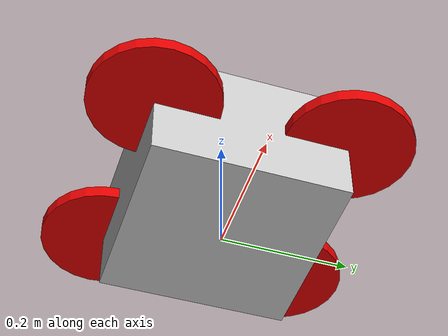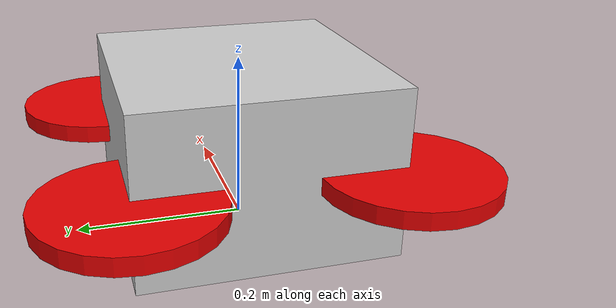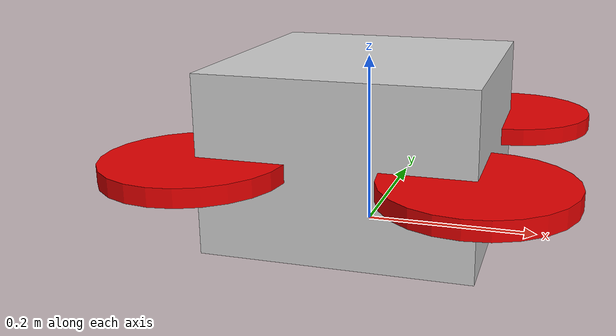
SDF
<?xml version='1.0'?>
<sdf version='1.6'>
  <model name='autonomous_drone'>
    <!-- Base drone parameters -->
    <link name='base_link'>
      <pose>0 0 0.1 0 0 0</pose>
      <inertial>
        <mass>1.5</mass>
        <inertia>
          <ixx>0.0347563</ixx>
          <iyy>0.0458929</iyy>
          <izz>0.0976733</izz>
        </inertia>
      </inertial>
      <collision name='base_collision'>
        <geometry>
          <box>
            <size>0.3 0.3 0.2</size>
          </box>
        </geometry>
      </collision>
      <visual name='base_visual'>
        <geometry>
          <box>
            <size>0.3 0.3 0.2</size>
          </box>
        </geometry>
        <material>
          <ambient>0.8 0.8 0.8 1</ambient>
        </material>
      </visual>
    </link>

    <!-- Rotor 1 (Front Right) -->
    <link name='rotor_1'>
      <pose>0.15 -0.15 0.1 0 0 0</pose>
      <inertial>
        <mass>0.1</mass>
        <inertia>
          <ixx>0.001</ixx>
          <iyy>0.001</iyy>
          <izz>0.001</izz>
        </inertia>
      </inertial>
      <collision name='rotor_1_collision'>
        <geometry>
          <cylinder>
            <radius>0.1</radius>
            <length>0.02</length>
          </cylinder>
        </geometry>
      </collision>
      <visual name='rotor_1_visual'>
        <geometry>
          <cylinder>
            <radius>0.1</radius>
            <length>0.02</length>
          </cylinder>
        </geometry>
        <material>
          <ambient>0.9 0 0 1</ambient>
        </material>
      </visual>
    </link>

    <!-- Rotor 2 (Front left) -->
    <link name='rotor_1'>
      <pose>-0.15 -0.15 0.1 0 0 0</pose>
      <inertial>
        <mass>0.1</mass>
        <inertia>
          <ixx>0.001</ixx>
          <iyy>0.001</iyy>
          <izz>0.001</izz>
        </inertia>
      </inertial>
      <collision name='rotor_1_collision'>
        <geometry>
          <cylinder>
            <radius>0.1</radius>
            <length>0.02</length>
          </cylinder>
        </geometry>
      </collision>
      <visual name='rotor_1_visual'>
        <geometry>
          <cylinder>
            <radius>0.1</radius>
            <length>0.02</length>
          </cylinder>
        </geometry>
        <material>
          <ambient>0.9 0 0 1</ambient>
        </material>
      </visual>
    </link>

    <!-- Rotor 3 (Back right) -->
    <link name='rotor_1'>
      <pose>0.15 0.15 0.1 0 0 0</pose>
      <inertial>
        <mass>0.1</mass>
        <inertia>
          <ixx>0.001</ixx>
          <iyy>0.001</iyy>
          <izz>0.001</izz>
        </inertia>
      </inertial>
      <collision name='rotor_1_collision'>
        <geometry>
          <cylinder>
            <radius>0.1</radius>
            <length>0.02</length>
          </cylinder>
        </geometry>
      </collision>
      <visual name='rotor_1_visual'>
        <geometry>
          <cylinder>
            <radius>0.1</radius>
            <length>0.02</length>
          </cylinder>
        </geometry>
        <material>
          <ambient>0.9 0 0 1</ambient>
        </material>
      </visual>
    </link>

    <!-- Rotor 4 (back left) -->
    <link name='rotor_1'>
      <pose>-0.15 0.15 0.1 0 0 0</pose>
      <inertial>
        <mass>0.1</mass>
        <inertia>
          <ixx>0.001</ixx>
          <iyy>0.001</iyy>
          <izz>0.001</izz>
        </inertia>
      </inertial>
      <collision name='rotor_1_collision'>
        <geometry>
          <cylinder>
            <radius>0.1</radius>
            <length>0.02</length>
          </cylinder>
        </geometry>
      </collision>
      <visual name='rotor_1_visual'>
        <geometry>
          <cylinder>
            <radius>0.1</radius>
            <length>0.02</length>
          </cylinder>
        </geometry>
        <material>
          <ambient>0.9 0 0 1</ambient>
        </material>
      </visual>
    </link>

    <!-- Repeat for Rotors 2-4 with positions:
         Rotor 2: -0.15 -0.15 (Front Left)
         Rotor 3: 0.15 0.15 (Back Right)
         Rotor 4: -0.15 0.15 (Back Left) -->

    <!-- PX4 Interface Plugin -->
    <plugin name='px4_interface' filename='libgazebo_px4_interface.so'>
      <robotNamespace>/</robotNamespace>
      <imuTopic>/mavros/imu/data_raw</imuTopic>
      <gpsTopic>/mavros/gps_input/gps_input</gpsTopic>
      <controlTopic>/mavros/setpoint_raw/attitude</controlTopic>
      <mavlink_addr>127.0.0.1</mavlink_addr>
      <mavlink_udp_port>14560</mavlink_udp_port>
      <mavlink_tcp_port>4560</mavlink_tcp_port>
    </plugin>

    <!-- IMU Sensor -->
    <plugin name='imu_plugin' filename='libgazebo_imu_plugin.so'>
      <robotNamespace>/</robotNamespace>
      <topicName>/mavros/imu/data_raw</topicName>
      <bodyName>base_link</bodyName>
      <updateRate>200</updateRate>
    </plugin>

    <!-- GPS Sensor -->
    <plugin name='gps_plugin' filename='libgazebo_gps_plugin.so'>
      <robotNamespace>/</robotNamespace>
      <topicName>/mavros/gps_input/gps_input</topicName>
      <gpsNoise>0.01</gpsNoise>
      <updateRate>10</updateRate>
    </plugin>

    <!-- Motor Control -->
    <plugin name='motor_control' filename='libgazebo_motor_control.so'>
      <robotNamespace>/</robotNamespace>
      <commandTopic>/mavros/setpoint_raw/attitude</commandTopic>
      <motorJoint>rotor_1_joint</motorJoint>
      <motorJoint>rotor_2_joint</motorJoint>
      <motorJoint>rotor_3_joint</motorJoint>
      <motorJoint>rotor_4_joint</motorJoint>
    </plugin>
  </model>
</sdf>
